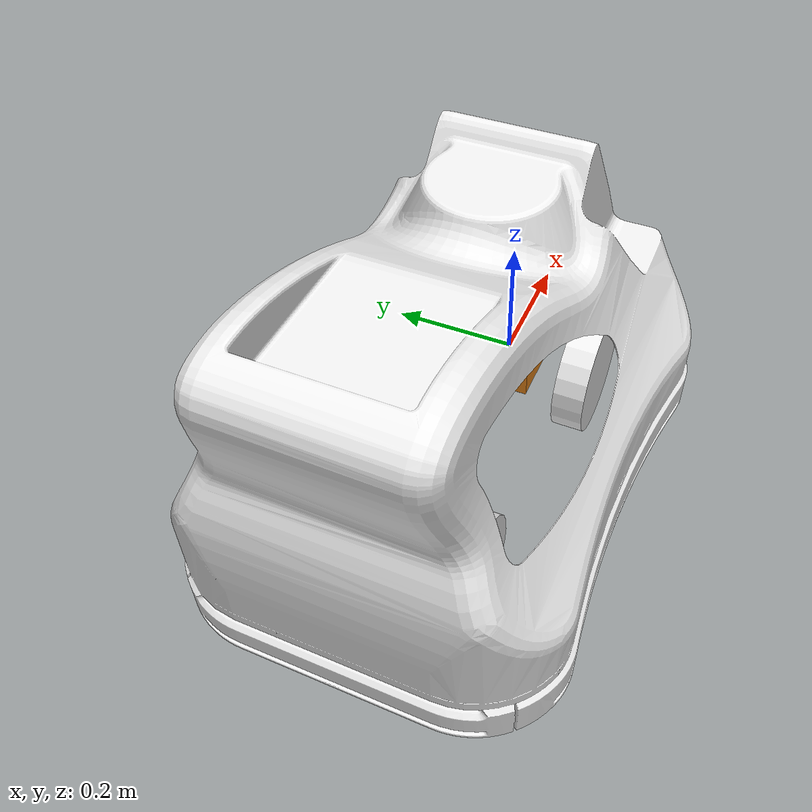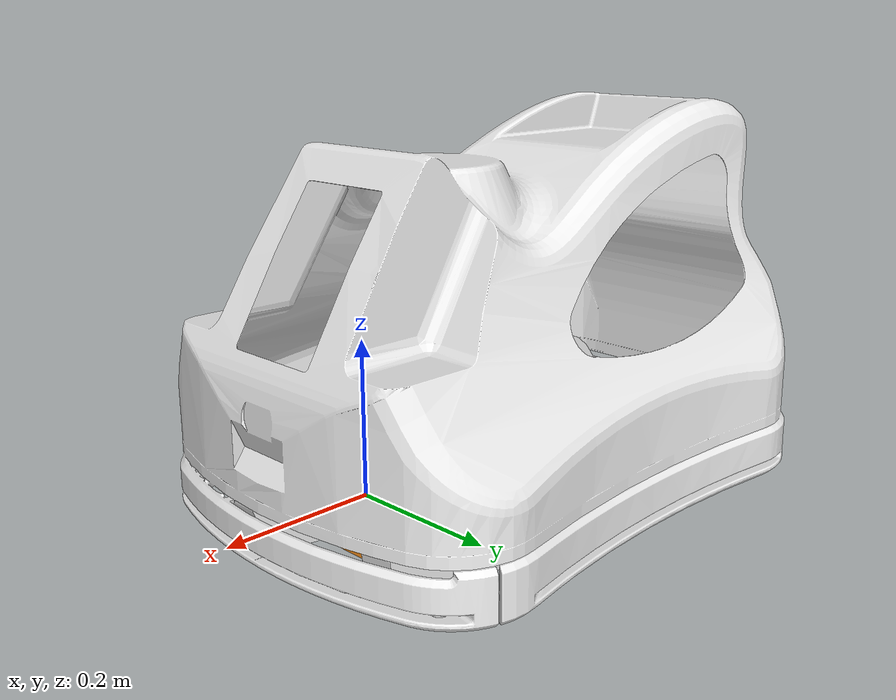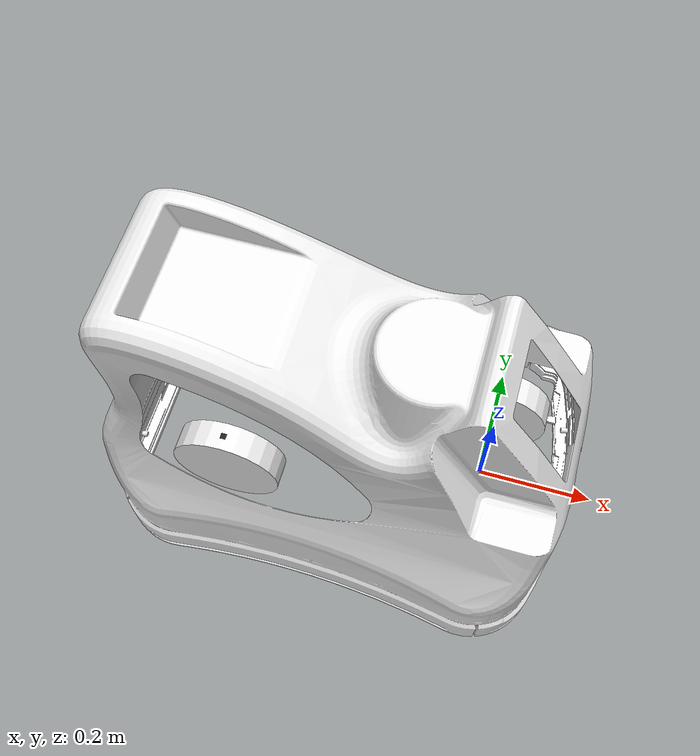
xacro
<?xml version="1.0"?>
<robot
  xmlns:xacro="http://www.ros.org/wiki/xacro"
  name="platform">

  <xacro:property name="PI" value="3.1415926535897931"/>
  <xacro:property name="mass" value="1" /> <!-- arbitrary value for mass -->
  <xacro:property name="width" value="0.8" />
  <xacro:property name="depth" value="1.0" />
  <xacro:property name="radius_wheel" value="0.1" />
  <xacro:property name="radius_small_wheel" value="0.05" />
  <xacro:property name="length_wheel" value="0.05" />
  <xacro:property name="height1" value="0.5" /> <!-- Link 1 -->
  <xacro:property name="height2" value="0.1" /> <!-- Link 2 -->
  <xacro:property name="height3" value="1" /> <!-- Link 3 -->
  <xacro:property name="camera_link" value="0.05" />
  <xacro:property name="axel_offset" value="0.05" />

    <xacro:include filename="$(find fp_materials)/urdf/materials.urdf.xacro"/>

    <xacro:property
    name="platform_param"
    value="${load_yaml('$(find platform_description)/config/LIOc.yaml')}" />

  <xacro:property name="lidar_front_rotation" value="$(env RDSCFG_fp_descriptions_lidar_front_rotation)"/>
  <xacro:property name="lidar_back_rotation" value="$(env RDSCFG_fp_descriptions_lidar_back_rotation)"/>

  <link name="base_footprint">
    <visual>
      <origin xyz="0 0 0" rpy="0 0 0"/>
      <geometry>
        <box size="0.1 0.1 0.1"/>
      </geometry>
      <material name="orange"/>
    </visual>
    <collision>
      <origin xyz="0 0 0" rpy="0 0 0"/>
      <geometry>
        <box size="0.1 0.1 0.1"/>
      </geometry>
    </collision>

    <inertial>
      <origin xyz="0 0 0" rpy="0 0 0"/>
      <mass value="1"/>
      <inertia ixx="1.0" ixy="0.0" ixz="0.0"
                 iyy="1.0" iyz="0.0"
                 izz="1.0" />
    </inertial>
  </link>

  <joint name="base_joint" type="fixed">

    <origin xyz="-0.113 0 0" rpy="0 0 0" />
    <parent link="base_footprint"/>
    <child link="platform_base_link" />
  </joint>

   <link name="platform_base_link">
        <visual>
          <geometry>
               <mesh
                filename="package://platform_description/meshes/platform_LIO.STL" />
          </geometry>
          <origin rpy="0 0 1.57" xyz="0 0 -0.07"/>
          <material name="white"/>
         </visual>

       <collision>
      <origin rpy="0 0 1.57" xyz="0 0 -0.07"/>
          <geometry>
               <mesh filename="package://platform_description/meshes/platform_LIO.STL" />
          </geometry>
    </collision>

       <inertial>
      <origin xyz="0 0 0" rpy="0 0 0"/>
      <mass value="100"/>
      <inertia ixx="1.0" ixy="0.0" ixz="0.0"
                 iyy="1.0" iyz="0.0"
                 izz="1.0" />
    </inertial>
  </link>

<xacro:macro name="default_inertial" params="mass">
    <inertial>
            <mass value="${mass}" />
            <inertia ixx="0.2" ixy="0.0" ixz="0.0"
                 iyy="0.2" iyz="0.0"
                 izz="0.2" />
    </inertial>
</xacro:macro>

<xacro:macro name="wheel" params="parent_link name_link radius_wheel x y z rot_x rot_y rot_z">
    <link name="${name_link}_leg">
        <visual>
            <geometry>
                <cylinder radius="${radius_wheel}" length="${length_wheel}"/>
            </geometry>
            <origin xyz="0 0 0" rpy="${PI/2} 0 0"/>
            <material name="white"/>
        </visual>
        <collision>
            <geometry>
                <cylinder radius="${radius_wheel}" length="${length_wheel}"/>
            </geometry>
            <origin xyz="0 0 0" rpy="${PI/2} 0 0"/>
        </collision>
        <xacro:default_inertial mass="1"/>
    </link>

    <joint name="base_to_${name_link}" type="continuous">
        <parent link="${parent_link}"/>
        <child link="${name_link}_leg"/>
        <origin xyz="${x} ${y} ${z}" />
        <axis xyz="${rot_x} ${rot_y} ${rot_z}"/>
    </joint>
    <!-- A bunch of stuff cut -->
</xacro:macro>

<xacro:wheel parent_link="platform_base_link" name_link="wheel_front_left" radius_wheel="${radius_wheel}" x="${depth/9}" y="${width/6}" z="${0.1 - radius_wheel}" rot_x="0" rot_y="1" rot_z="0" />
<xacro:wheel parent_link="platform_base_link" name_link="wheel_front_right" radius_wheel="${radius_wheel}" x="${depth/9}" y="${-width/6}" z="${0.1 - radius_wheel}" rot_x="0" rot_y="1" rot_z="0" />

  <!-- wheel_back_right vertical joint-->
  <joint name="joint1_wheel_back_right" type="continuous">
    <parent link="platform_base_link"/>
    <child link="wheel_back_right_bar"/>
    <origin xyz="${-depth/3} ${-width/8} 0.1" rpy="0 0 0"/>
    <axis xyz="0 0 1"/>
    <dynamics damping="0.7"/>
  </joint>

  <link name="wheel_back_right_bar">
    <visual>
      <origin xyz="0 0 ${-height2/2}" rpy="0 0 0"/>
      <geometry>
        <box size="0.01 0.01 ${height2}"/>
      </geometry>
      <material name="black"/>
    </visual>

    <collision>
      <origin xyz="0 0 ${-height2/2}" rpy="0 0 0"/>
      <geometry>
        <box size="0.01 0.01 ${height2}"/>
      </geometry>
    </collision>

    <inertial>
      <origin xyz="0 0 ${-height2/2}" rpy="0 0 0"/>
      <mass value="${mass}"/>
      <inertia
          ixx="${mass / 12.0 * (width*width + height2*height2)}" ixy="0.0" ixz="0.0"
          iyy="${mass / 12.0 * (height2*height2 + width*width)}" iyz="0.0"
          izz="${mass / 12.0 * (width*width + width*width)}"/>
    </inertial>
  </link>

<xacro:wheel parent_link="wheel_back_right_bar" name_link="wheel_back_right" radius_wheel="${radius_wheel}" x="0" y="0" z="${-height2}" rot_x="0" rot_y="1" rot_z="0" />

  <!-- wheel_back_left vertical joint-->
  <joint name="joint1_wheel_back_left" type="continuous">
    <parent link="platform_base_link"/>
    <child link="wheel_back_left_bar"/>
    <origin xyz="${-depth/3} ${width/8} 0.1" rpy="0 0 0"/>
    <axis xyz="0 0 1"/>
    <dynamics damping="0.7"/>
  </joint>

  <link name="wheel_back_left_bar">
    <visual>
      <origin xyz="0 0 ${-height2/2}" rpy="0 0 0"/>
      <geometry>
        <box size="0.01 0.01 ${height2}"/>
      </geometry>
      <material name="black"/>
    </visual>

    <collision>
      <origin xyz="0 0 ${-height2/2}" rpy="0 0 0"/>
      <geometry>
        <box size="0.01 0.01 ${height2}"/>
      </geometry>
    </collision>

    <inertial>
      <origin xyz="0 0 ${-height2/2}" rpy="0 0 0"/>
      <mass value="${mass}"/>
      <inertia
          ixx="${mass / 12.0 * (width*width + height2*height2)}" ixy="0.0" ixz="0.0"
          iyy="${mass / 12.0 * (height2*height2 + width*width)}" iyz="0.0"
          izz="${mass / 12.0 * (width*width + width*width)}"/>
    </inertial>
  </link>

<xacro:wheel parent_link="wheel_back_left_bar" name_link="wheel_back_left" radius_wheel="${radius_wheel}" x="0" y="0" z="${-height2}" rot_x="0" rot_y="1" rot_z="0" />

</robot>
